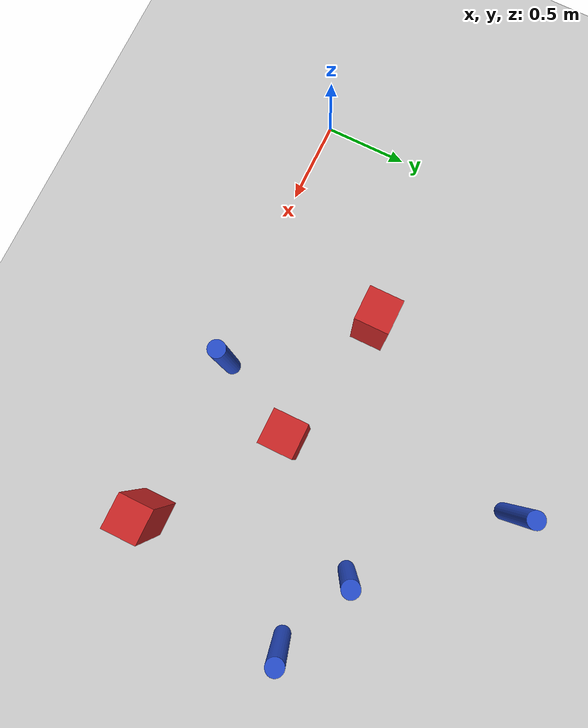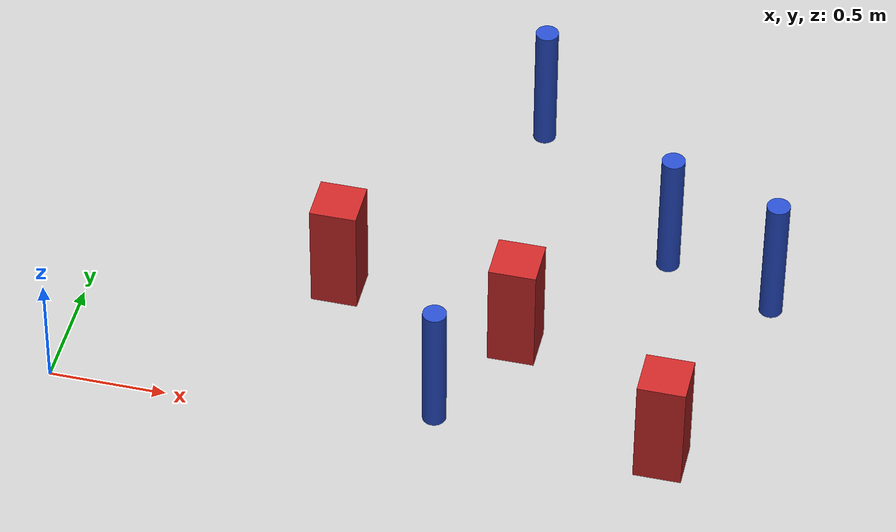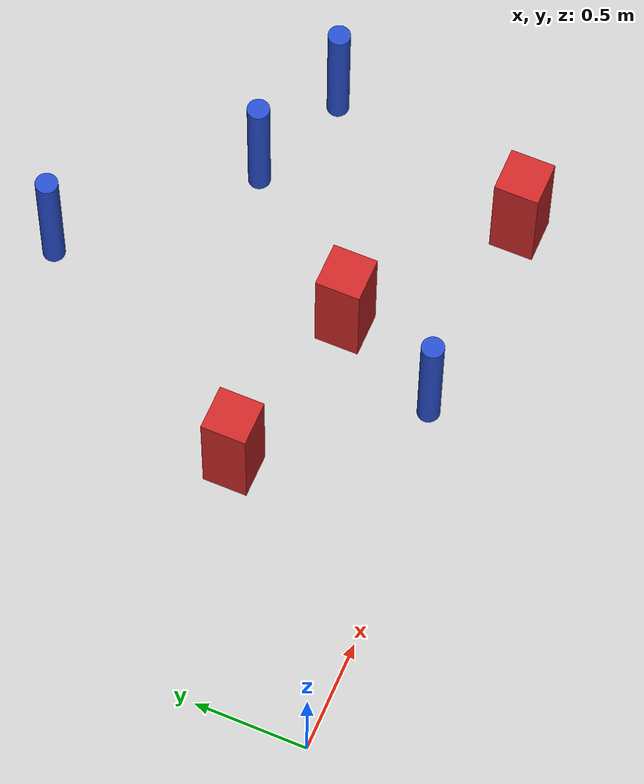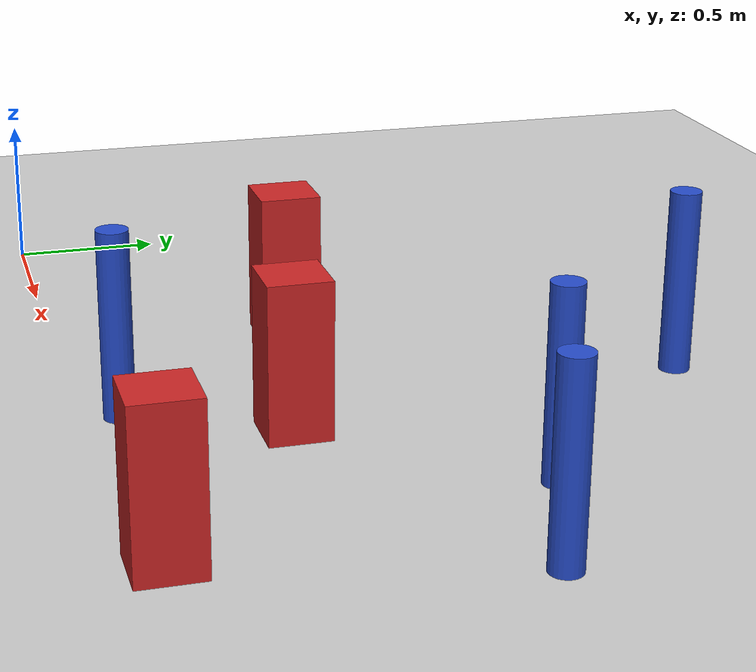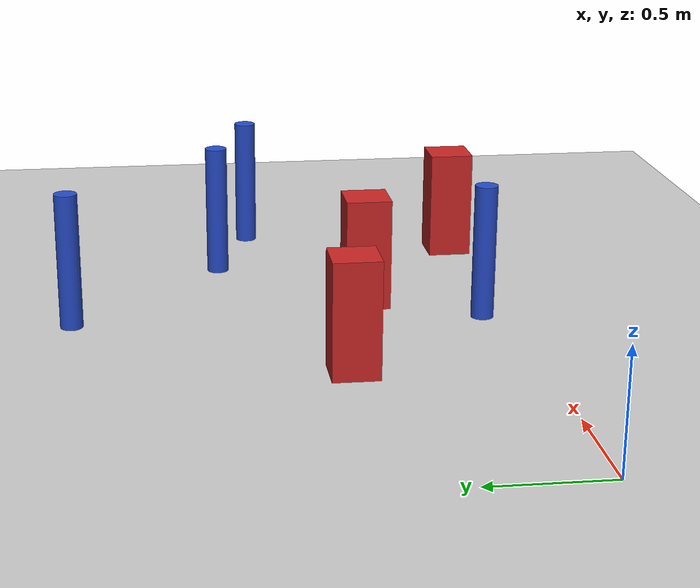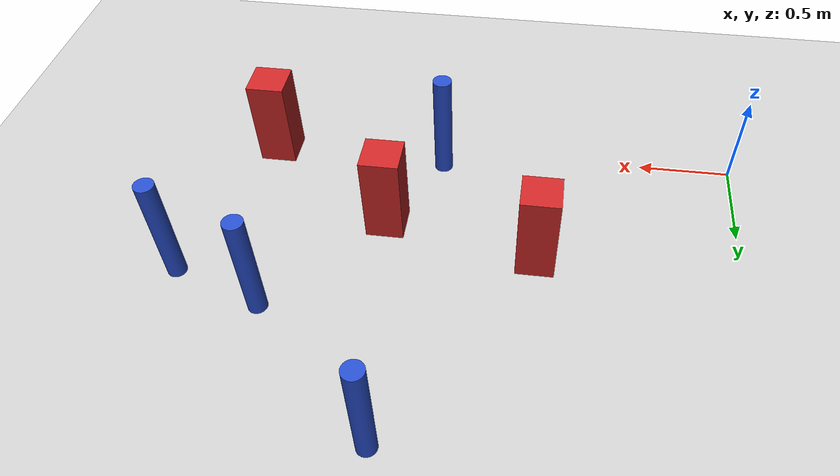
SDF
<sdf version="1.6">
 <world name="default">
  <model name="ground_plane">
   <static>1</static>
   <link name="link">
    <collision name="collision">
     <geometry><plane><normal>0 0 1</normal><size>100 100</size></plane></geometry>
     <surface><friction><ode><mu>100</mu><mu2>50</mu2></ode></friction></surface>
    </collision>
    <visual name="visual">
     <cast_shadows>0</cast_shadows>
     <geometry><plane><normal>0 0 1</normal><size>100 100</size></plane></geometry>
     <material>
      <ambient>1.0 1.0 1.0 1.0</ambient>
      <diffuse>0.8 0.8 0.8 1.0</diffuse>
      <specular>0.01 0.01 0.01 1.000000</specular>
     </material>
    </visual>
   </link>
  </model>
  <model name="pole_obstacle4">
   <static>true</static>
   <pose>2.38419710728 1.24697682987 -2.66029137441e-07 -5.69430205626e-07 6.84129966567e-07 -8.68349370747e-08</pose>
   <link name="link">
    <pose>0 0 0.3 0 -0 0</pose>
    <inertial>
     <mass>1</mass>
     <inertia><ixx>0.145833</ixx><ixy>0</ixy><ixz>0</ixz><iyy>0.145833</iyy><iyz>0</iyz><izz>0.125</izz></inertia>
    </inertial>
    <collision name="collision">
     <geometry><cylinder><radius>0.05</radius><length>.6</length></cylinder></geometry>
    </collision>
    <visual name="visual">
     <geometry><cylinder><radius>0.05</radius><length>.6</length></cylinder></geometry>
     <material>
      <script><name>Gazebo/Blue</name><uri>file://media/materials/scripts/gazebo.material</uri></script>
     </material>
    </visual>
   </link>
  </model>
  <model name="square_post_obstacle15">
   <static>true</static>
   <pose>2.57964126058 0.0965938394475 -7.80171244635e-07 7.17449752808e-06 -5.6639232126e-07 2.2715510512e-05</pose>
   <link name="link">
    <pose>0 0 0.25 0 -0 0</pose>
    <inertial>
     <mass>100</mass>
     <inertia>
      <ixx>0.166667</ixx>
      <ixy>0</ixy>
      <ixz>0</ixz>
      <iyy>0.166667</iyy>
      <iyz>0</iyz>
      <izz>0.166667</izz>
     </inertia>
    </inertial>
    <collision name="collision"><geometry><box><size>.2 .2 .5</size></box></geometry></collision>
    <visual name="visual">
     <geometry><box><size>.2 .2 .5</size></box></geometry>
     <material>
      <script><name>Gazebo/Red</name><uri>file://media/materials/scripts/gazebo.material</uri></script>
     </material>
    </visual>
   </link>
  </model>
  <model name="pole_obstacle30">
   <static>true</static>
   <pose>1.69637625777 1.9237775565 -2.66029137441e-07 -5.69430205631e-07 6.84129966561e-07 -8.68349370801e-08</pose>
   <link name="link">
    <pose>0 0 0.3 0 -0 0</pose>
    <inertial>
     <mass>1</mass>
     <inertia><ixx>0.145833</ixx><ixy>0</ixy><ixz>0</ixz><iyy>0.145833</iyy><iyz>0</iyz><izz>0.125</izz></inertia>
    </inertial>
    <collision name="collision">
     <geometry><cylinder><radius>0.05</radius><length>.6</length></cylinder></geometry>
    </collision>
    <visual name="visual">
     <geometry><cylinder><radius>0.05</radius><length>.6</length></cylinder></geometry>
     <material>
      <script><name>Gazebo/Blue</name><uri>file://media/materials/scripts/gazebo.material</uri></script>
     </material>
    </visual>
   </link>
  </model>
  <model name="square_post_obstacle99">
   <static>true</static>
   <pose>1.04912646387 0.784265294401 -7.80171244635e-07 7.17449752808e-06 -5.6639232126e-07 2.2715510512e-05</pose>
   <link name="link">
    <pose>0 0 0.25 0 -0 0</pose>
    <inertial>
     <mass>100</mass>
     <inertia>
      <ixx>0.166667</ixx>
      <ixy>0</ixy>
      <ixz>0</ixz>
      <iyy>0.166667</iyy>
      <iyz>0</iyz>
      <izz>0.166667</izz>
     </inertia>
    </inertial>
    <collision name="collision"><geometry><box><size>.2 .2 .5</size></box></geometry></collision>
    <visual name="visual">
     <geometry><box><size>.2 .2 .5</size></box></geometry>
     <material>
      <script><name>Gazebo/Red</name><uri>file://media/materials/scripts/gazebo.material</uri></script>
     </material>
    </visual>
   </link>
  </model>
  <model name="pole_obstacle151">
   <static>true</static>
   <pose>2.86085505439 1.07407964328 -2.66029137441e-07 -5.69430205626e-07 6.84129966567e-07 -8.68349370747e-08</pose>
   <link name="link">
    <pose>0 0 0.3 0 -0 0</pose>
    <inertial>
     <mass>1</mass>
     <inertia><ixx>0.145833</ixx><ixy>0</ixy><ixz>0</ixz><iyy>0.145833</iyy><iyz>0</iyz><izz>0.125</izz></inertia>
    </inertial>
    <collision name="collision">
     <geometry><cylinder><radius>0.05</radius><length>.6</length></cylinder></geometry>
    </collision>
    <visual name="visual">
     <geometry><cylinder><radius>0.05</radius><length>.6</length></cylinder></geometry>
     <material>
      <script><name>Gazebo/Blue</name><uri>file://media/materials/scripts/gazebo.material</uri></script>
     </material>
    </visual>
   </link>
  </model>
  <model name="square_post_obstacle209">
   <static>true</static>
   <pose>1.85395142347 0.613886573397 -7.80171244635e-07 7.17449752808e-06 -5.6639232126e-07 2.2715510512e-05</pose>
   <link name="link">
    <pose>0 0 0.25 0 -0 0</pose>
    <inertial>
     <mass>100</mass>
     <inertia>
      <ixx>0.166667</ixx>
      <ixy>0</ixy>
      <ixz>0</ixz>
      <iyy>0.166667</iyy>
      <iyz>0</iyz>
      <izz>0.166667</izz>
     </inertia>
    </inertial>
    <collision name="collision"><geometry><box><size>.2 .2 .5</size></box></geometry></collision>
    <visual name="visual">
     <geometry><box><size>.2 .2 .5</size></box></geometry>
     <material>
      <script><name>Gazebo/Red</name><uri>file://media/materials/scripts/gazebo.material</uri></script>
     </material>
    </visual>
   </link>
  </model>
  <model name="pole_obstacle220">
   <static>true</static>
   <pose>1.61820785848 0.127920765274 -2.66029137441e-07 -5.69430205629e-07 6.84129966564e-07 -8.68349370763e-08</pose>
   <link name="link">
    <pose>0 0 0.3 0 -0 0</pose>
    <inertial>
     <mass>1</mass>
     <inertia><ixx>0.145833</ixx><ixy>0</ixy><ixz>0</ixz><iyy>0.145833</iyy><iyz>0</iyz><izz>0.125</izz></inertia>
    </inertial>
    <collision name="collision">
     <geometry><cylinder><radius>0.05</radius><length>.6</length></cylinder></geometry>
    </collision>
    <visual name="visual">
     <geometry><cylinder><radius>0.05</radius><length>.6</length></cylinder></geometry>
     <material>
      <script><name>Gazebo/Blue</name><uri>file://media/materials/scripts/gazebo.material</uri></script>
     </material>
    </visual>
   </link>
  </model>
 </world>
</sdf>
